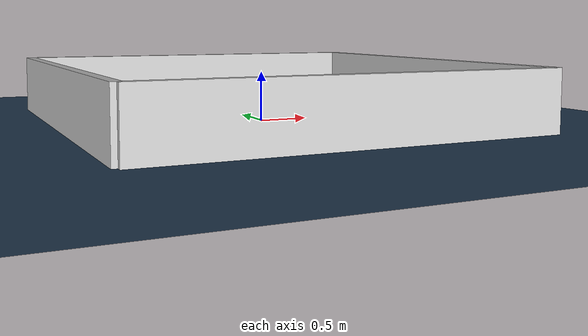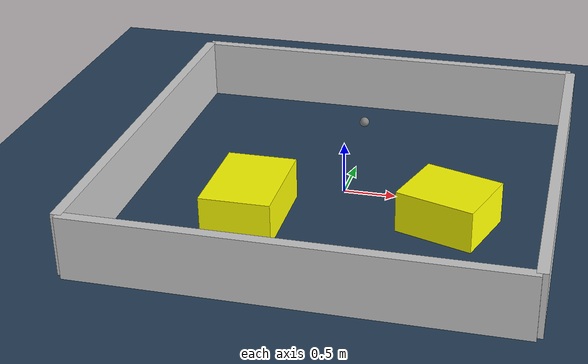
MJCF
<?xml version="1.0" ?>
<mujoco model="generated_environment">
  <option timestep="0.01" integrator="RK4" cone="elliptic"/>
  <default>
    <geom density="1"/>
  </default>
  <asset>
    <texture builtin="gradient" height="3072" rgb1="0.3 0.5 0.7" rgb2="0 0 0" type="skybox" width="512"/>
    <texture builtin="checker" height="300" mark="edge" markrgb="0.8 0.8 0.8" name="groundplane" rgb1="0.2 0.3 0.4" rgb2="0.1 0.2 0.3" type="2d" width="300"/>
    <material name="groundplane" reflectance="0.2" texrepeat="5 5" texture="groundplane" texuniform="true"/>
    <material name="robot" rgba="0.0 1.0 0.0 1"/>
  </asset>
  <worldbody>
    <light dir="0 0 -1" directional="true" pos="0 0 1.5"/>
    <geom condim="4" friction="1.0 0.005 0.001" material="groundplane" name="floor" size="0 0 0.05" type="plane"/>
    <body name="walls">
      <geom name="wall_1" condim="4" pos="-2.0 0.0 0.3" rgba="0.800000011920929 0.800000011920929 0.800000011920929 1.0" size="0.05 2.0 0.3" type="box"/>
      <geom name="wall_2" condim="4" pos="2.0 0.0 0.3" rgba="0.800000011920929 0.800000011920929 0.800000011920929 1.0" size="0.05 2.0 0.3" type="box"/>
      <geom name="wall_3" condim="4" pos="0.0 -2.0 0.3" rgba="0.800000011920929 0.800000011920929 0.800000011920929 1.0" size="2.0 0.05 0.3" type="box"/>
      <geom name="wall_4" condim="4" pos="0.0 2.0 0.3" rgba="0.800000011920929 0.800000011920929 0.800000011920929 1.0" size="2.0 0.05 0.3" type="box"/>
    </body>
    <body name="robot">
      <joint name="joint_x" type="slide" pos="0 0 0" axis="1 0 0"/>
      <joint name="joint_y" type="slide" pos="0 0 0" axis="0 1 0"/>
      <geom name="robot" type="sphere" pos="-0.05172741074364473 1.1585779984721807 0.2" size="0.05" mass="5." friction="1.0 0.005 0.0001" condim="4"/>
      <site name="sensor_ball"/>
    </body>
    <body name="obstacle_1_movable">
      <geom name="obstacle_1_movable" condim="4" pos="-0.7484331770667517 -0.671128586059365 0.2" euler="0 0 90.23811476220578" friction="1.0 0.005 0.001" rgba="1 1 0 1" size="0.46272206922415027 0.33131783262994496 0.2" type="box" mass="0.1"/>
      <joint type="free"/>
    </body>
    <body name="obstacle_2_movable">
      <geom name="obstacle_2_movable" condim="4" pos="1.0726217288285185 -0.4414164747532052 0.2" euler="0 0 162.08886416241202" friction="1.0 0.005 0.001" rgba="1 1 0 1" size="0.37994171139260824 0.32531187356830005 0.2" type="box" mass="0.1"/>
      <joint type="free"/>
    </body>
  </worldbody>
  <actuator>
    <motor name="actuator_x" joint="joint_x" gear="1" ctrlrange="-1 1"/>
    <motor name="actuator_y" joint="joint_y" gear="1" ctrlrange="-1 1"/>
  </actuator>
</mujoco>
